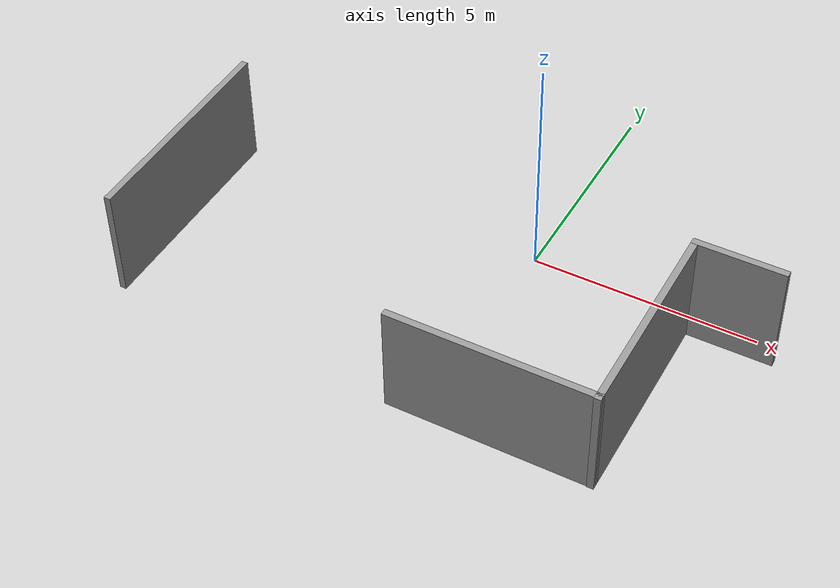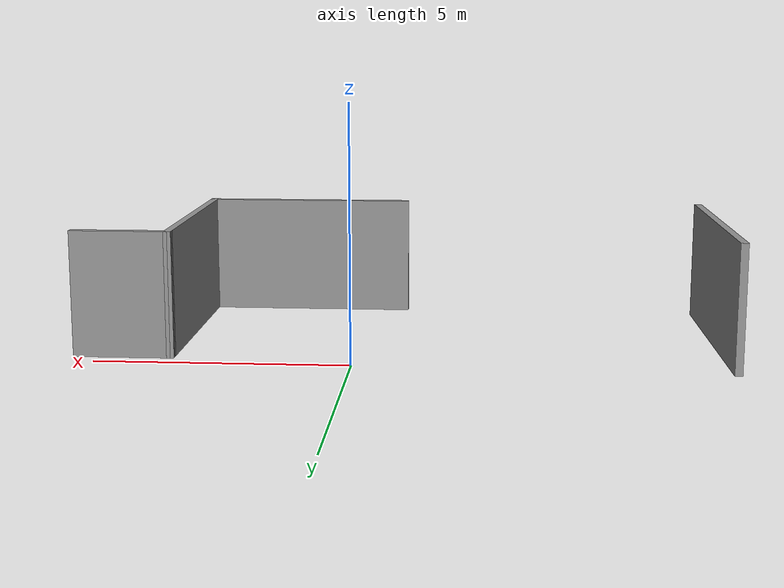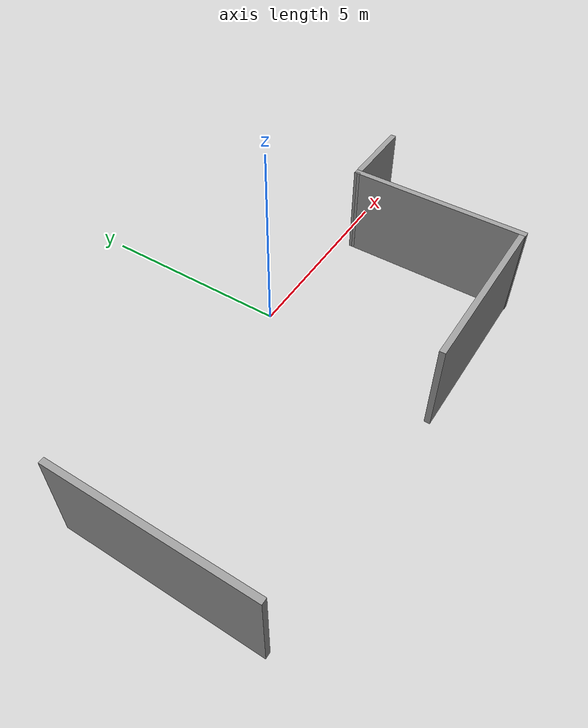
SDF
<?xml version='1.0'?>
<sdf version='1.6'>
  <model name='new_building'>
    <pose frame=''>-0.900033 -2.38102 0 0 -0 0</pose>
    <link name='Wall_1'>
      <collision name='Wall_1_Collision'>
        <geometry>
          <box>
            <size>5 0.15 2.5</size>
          </box>
        </geometry>
        <pose frame=''>0 0 1.25 0 -0 0</pose>
      </collision>
      <visual name='Wall_1_Visual'>
        <pose frame=''>0 0 1.25 0 -0 0</pose>
        <geometry>
          <box>
            <size>5 0.15 2.5</size>
          </box>
        </geometry>
        <material>
          <script>
            <uri>file://media/materials/scripts/gazebo.material</uri>
            <name>Gazebo/Grey</name>
          </script>
          <ambient>1 1 1 1</ambient>
        </material>
        <meta>
          <layer>0</layer>
        </meta>
      </visual>
      <pose frame=''>-6.32168 0.105639 0 0 -0 1.5708</pose>
    </link>
    <link name='Wall_4'>
      <collision name='Wall_4_Collision'>
        <geometry>
          <box>
            <size>4.5 0.15 2.5</size>
          </box>
        </geometry>
        <pose frame=''>0 0 1.25 0 -0 0</pose>
      </collision>
      <visual name='Wall_4_Visual'>
        <pose frame=''>0 0 1.25 0 -0 0</pose>
        <geometry>
          <box>
            <size>4.5 0.15 2.5</size>
          </box>
        </geometry>
        <material>
          <script>
            <uri>file://media/materials/scripts/gazebo.material</uri>
            <name>Gazebo/Grey</name>
          </script>
          <ambient>1 1 1 1</ambient>
        </material>
        <meta>
          <layer>0</layer>
        </meta>
      </visual>
      <pose frame=''>2.32313 -2.51697 0 0 -0 3.14159</pose>
    </link>
    <link name='Wall_6'>
      <collision name='Wall_6_Collision'>
        <geometry>
          <box>
            <size>4.66005 0.15 2.5</size>
          </box>
        </geometry>
        <pose frame=''>0 0 1.25 0 -0 0</pose>
      </collision>
      <visual name='Wall_6_Visual'>
        <pose frame=''>0 0 1.25 0 -0 0</pose>
        <geometry>
          <box>
            <size>4.66005 0.15 2.5</size>
          </box>
        </geometry>
        <material>
          <script>
            <uri>file://media/materials/scripts/gazebo.material</uri>
            <name>Gazebo/Grey</name>
          </script>
          <ambient>1 1 1 1</ambient>
        </material>
        <meta>
          <layer>0</layer>
        </meta>
      </visual>
      <pose frame=''>4.48491 -0.275213 0 0 -0 1.57666</pose>
    </link>
    <link name='Wall_7'>
      <collision name='Wall_7_Collision'>
        <geometry>
          <box>
            <size>2 0.15 2.5</size>
          </box>
        </geometry>
        <pose frame=''>0 0 1.25 0 -0 0</pose>
      </collision>
      <visual name='Wall_7_Visual'>
        <pose frame=''>0 0 1.25 0 -0 0</pose>
        <geometry>
          <box>
            <size>2 0.15 2.5</size>
          </box>
        </geometry>
        <material>
          <script>
            <uri>file://media/materials/scripts/gazebo.material</uri>
            <name>Gazebo/Grey</name>
          </script>
          <ambient>1 1 1 1</ambient>
        </material>
        <meta>
          <layer>0</layer>
        </meta>
      </visual>
      <pose frame=''>5.39668 1.97977 0 0 -0 0</pose>
    </link>
    <static>1</static>
  </model>
</sdf>
